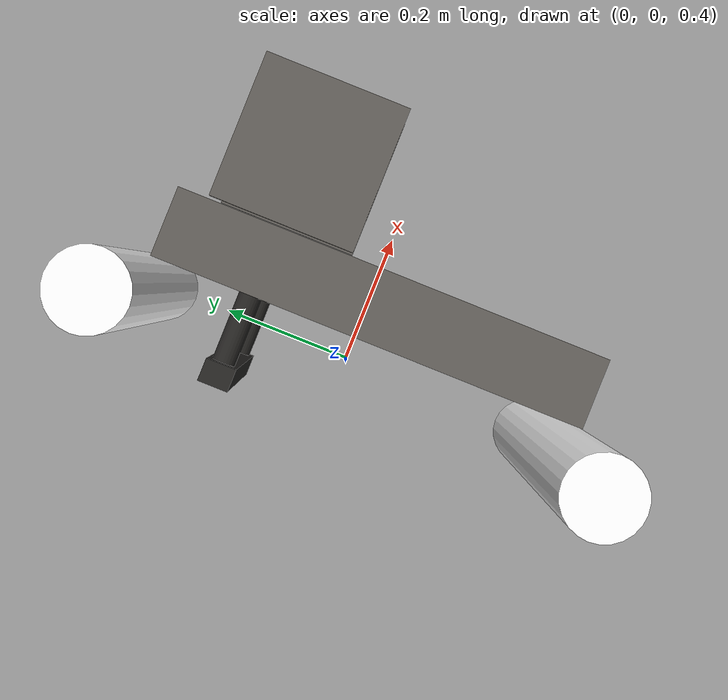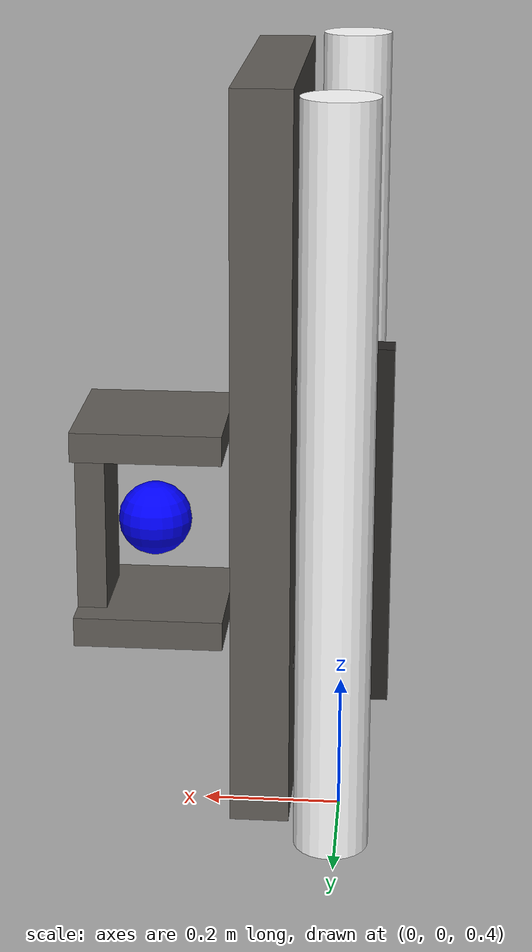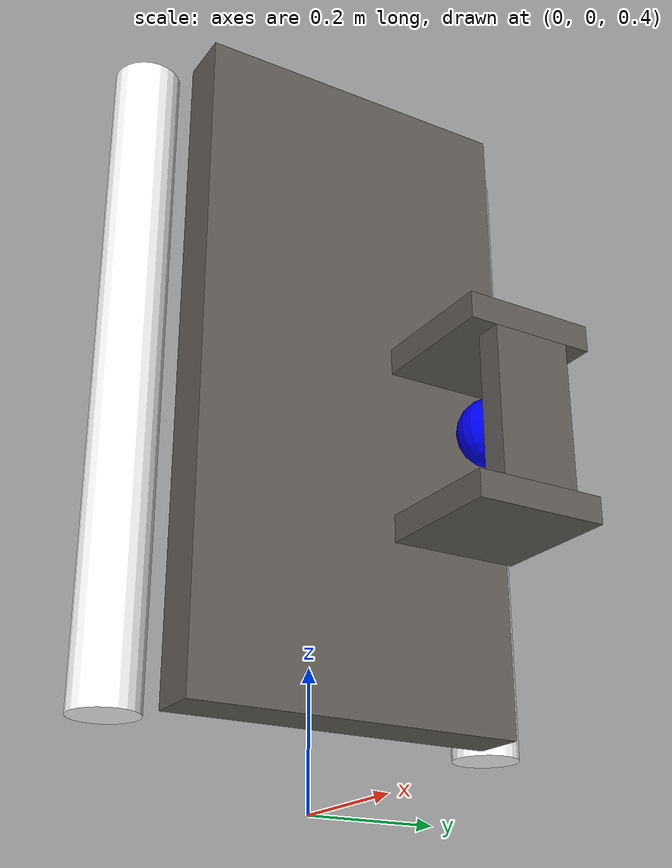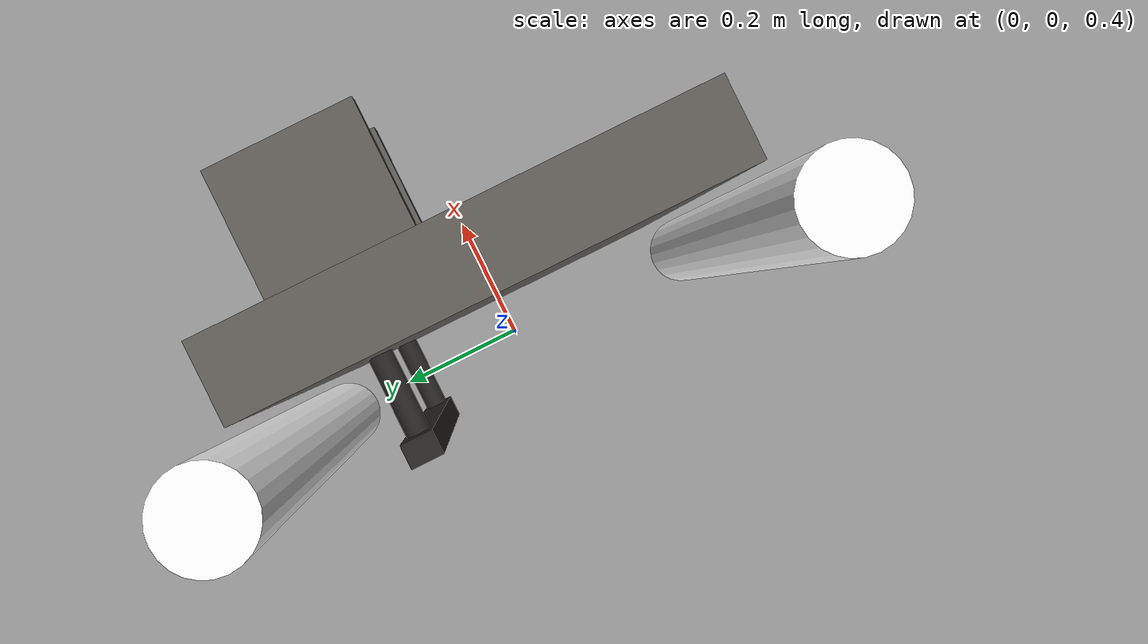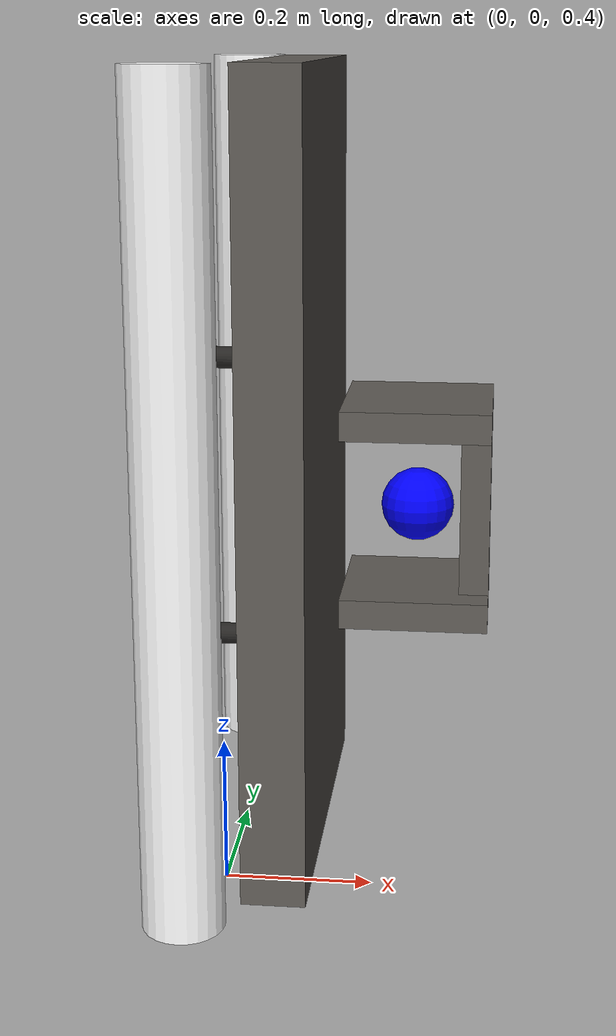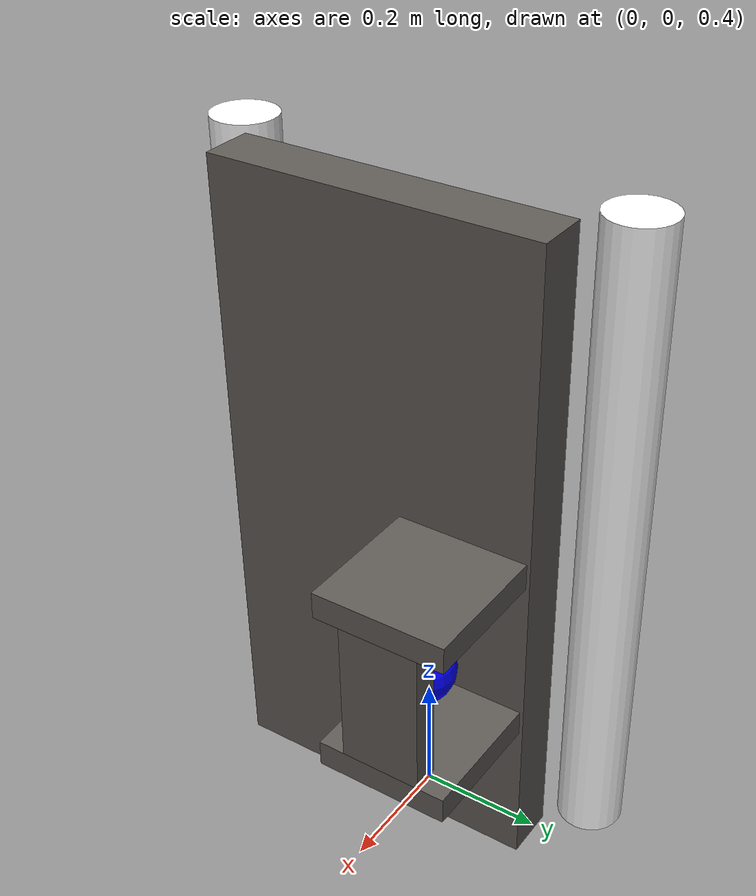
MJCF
<?xml version="1.0" encoding="utf-8"?>
<!-- from https://github.com/vikashplus/mj_envs/tree/master/mj_envs/hand_manipulation_suite/assets -->
<!-- Information about door can be found in this paper: https://arxiv.org/pdf/1709.10087.pdf -->

<mujoco model="door_lock">
  <asset>
    <texture file="../textures/steel-brushed.png" type="cube" name="metal" />
    <texture file="../textures/navy.png" type="cube" name="glass" />
    <material name="MatBright" texture="metal" specular="1" shininess="0.3" rgba="0.5 0.5 0.5 1" />
    <material name="MatDark" texture="metal" specular="0.2" shininess="0.3" rgba="0.2 0.2 0.2 1" />
    <material name="MatGlass" texture="glass" specular="1" shininess="0.3" rgba="1.0 1.0 1.0 1" />
  </asset>
    <worldbody>
      <body>
        <body name="object">
          <body name="object" pos="0 0 1.0">
            <body name="frame" pos="0 0 0" quat="0.707107 0 0 -0.707107">
              <geom name="r_frame"
                size="0.05 0.5" pos="0.3 0 0" type="cylinder" rgba="1 1 1 1"
                contype="0" conaffinity="0"  group="1"
                />
              <geom name="l_frame"
                size="0.05 0.5" pos="-0.3 0 0" type="cylinder" rgba="1 1 1 1"
                contype="0" conaffinity="0"  group="1"
                />

              <body name="shelf" pos="-0.15 0.25 -0.1" quat="0 0 0 1">
                <geom type="box" size="0.1 0.1 0.02" pos="0 0 -0.13" material="MatBright" group="0" />
                <geom type="box" size="0.1 0.1 0.02" pos="0 0 0.13" material="MatBright" group="0" />
                <geom type="box" size="0.06 0.02 0.11" pos="0 -0.08 0" material="MatBright" group="0" />

                <body name="socket_point" pos="0.0 -0.0 0.0"/>
                <site name="socket_point" pos="0.0 -0.0 0.0" size="0.05" rgba="0 0 1 1" />

              </body>

              <body name="sliding_point" pos="0.1 -0.05 -0.1"/>
              <site name="sliding_point" pos="0.1 -0.05 -0.1" size="0.05" rgba="0 0 1 0" />

              <body name="releasing_point" pos="0.1 -0.15 -0.1"/>
              <site name="releasing_point" pos="0.1 -0.15 -0.1" size="0.05" rgba="0 0 1 0" />

              <body name="door" pos="0 0.1 0">
                <inertial pos="0 0 0" mass="1.47392" diaginertia="0.472637 0.580381 0.109316"/>
                <!-- Density 20 kg/m^3 -->
                <joint name="slide" type="slide" pos="-0.3 0 0" axis="1 0 0" range="0.0 0.8" limited="true"
                  damping="1" frictionloss="0"
                  />
                <geom size="0.25 0.04 0.5" type="box" friction="1 1 1" group="0" material="MatBright"/>

                <body name="handle" pos="-0.15 0 -0.1">
                  <inertial pos="-0.017762 0 0" quat="0.365653 0.605347 -0.36522 0.605365" mass="0.1" diaginertia="0.0483771 0.0410001 0.0111013" />
                  <geom fromto="0 0.0  0.2 0 -0.14  0.2" size="0.015" type="cylinder" group="0" name="handle_up" material="MatDark"/>
                  <geom fromto="0 0.0 -0.2 0 -0.14 -0.2" size="0.015" type="cylinder" group="0" name="handle_bottom" material="MatDark"/>
                  <geom size="0.02 0.015 0.25" pos="0 -0.155 0" type="box" group="0" name="back_handle" material="MatDark"/>
                  <!-- Don't render the door handle site by default -->
                  <site name="handle" pos="-0.05 -0.15 0" size="0.05" rgba="1 0 0 0" />
                  <body name="grasping_point" pos="-0.05 -0.15 0"/>
                </body>
              </body>
            </body>
          </body>
        </body>
        <site name="bottom_site" pos="0 0 -0.6" rgba="0 0 0 0" size="0.005"/>
        <site name="top_site" pos="0 0 0.6" rgba="0 0 0 0" size="0.005"/>
        <site name="horizontal_radius_site" pos="0.3 0 0" rgba="0 0 0 0" size="0.1"/>
      </body>
    </worldbody>
</mujoco>
